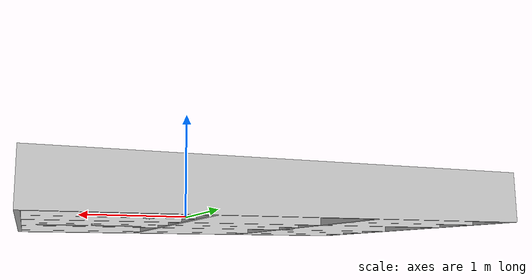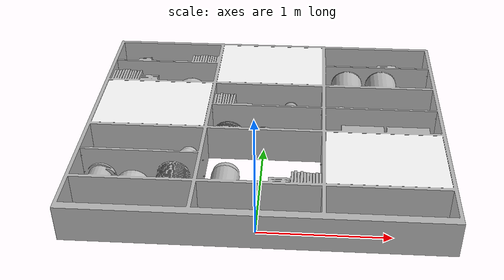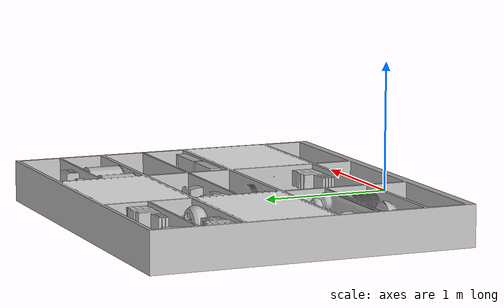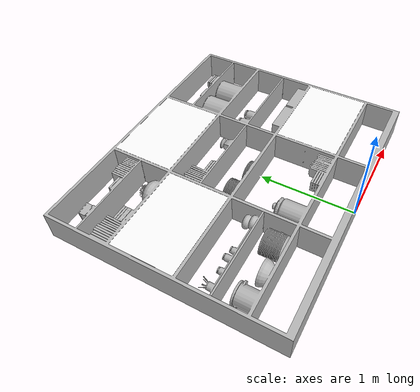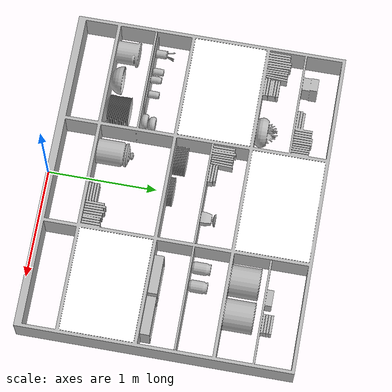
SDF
<?xml version="1.0" ?>
<sdf version="1.4">
    <model name="bookshelf">
      <static>true</static>
      <link name="body">
        <visual name="visual">
          <geometry>
            <mesh><uri>model://bookshelf/shelf2/shelf2.dae</uri></mesh>
          </geometry>
        </visual>
        <collision name="bookshelf">
          <pose>0 1.22 0 0 0 0</pose>
          <geometry>
            <box>
              <size>3.0 2.44 0.32</size>
            </box>
          </geometry>
          <surface>
            <friction>
              <ode>
                <mu>100</mu>
                <mu2>50</mu2>
              </ode>
            </friction>
          </surface>
        </collision>
      </link>
    </model>
</sdf>
